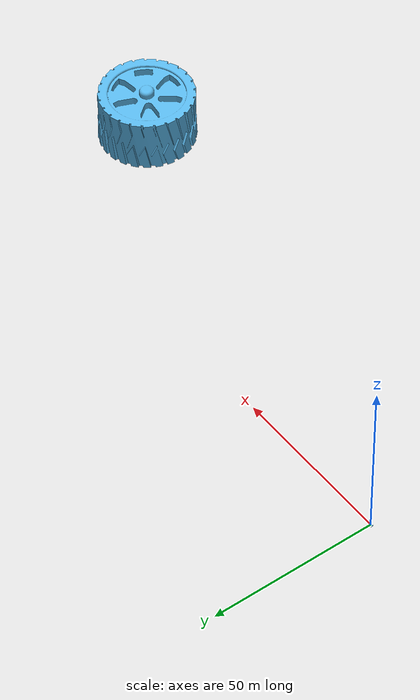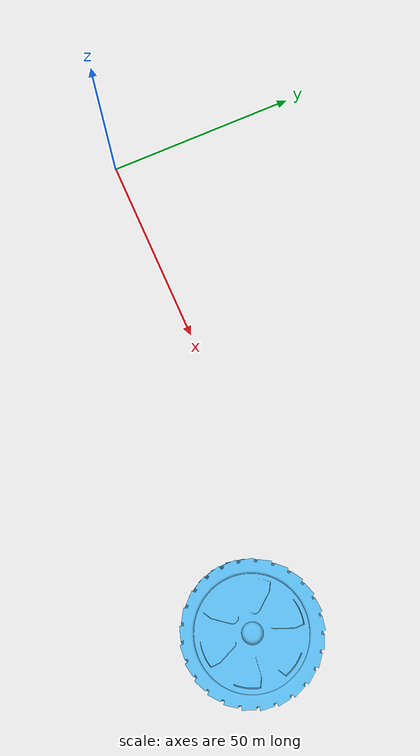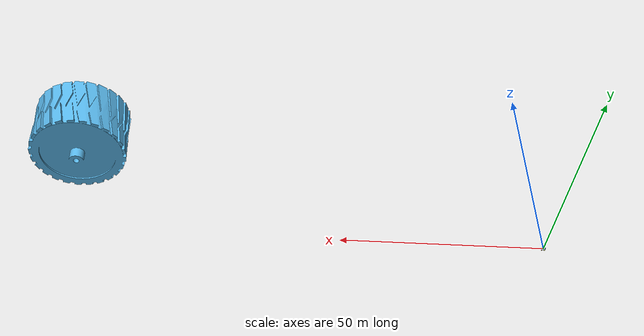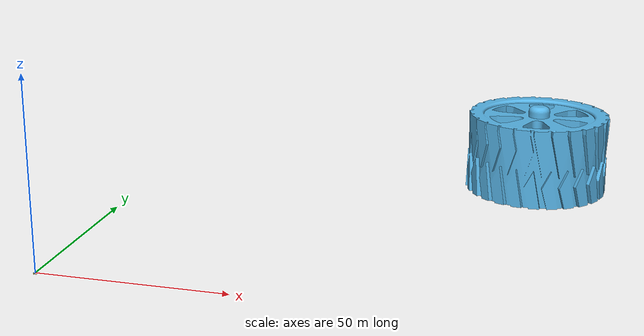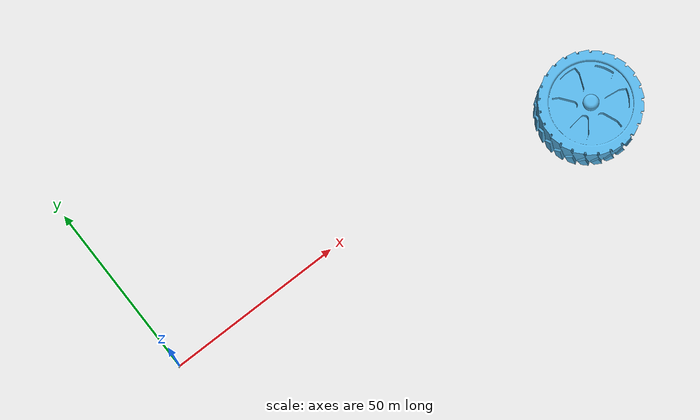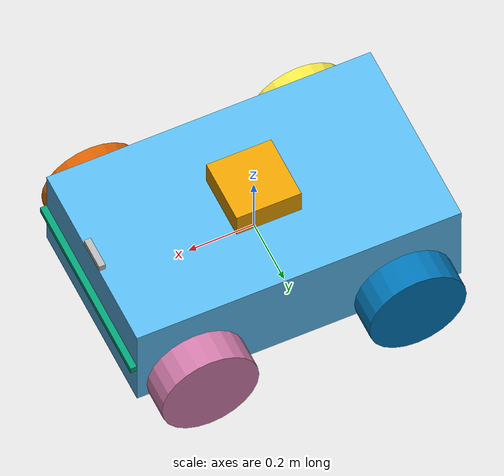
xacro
<?xml version="1.0"?>

<robot name="differential_drive_robot" xmlns:xacro="http://www.ros.org/wiki/xacro">
<xacro:property name="body_link_x_dim" value="1"/>
<xacro:property name="body_link_y_dim" value="0.6"/>
<xacro:property name="body_link_z_dim" value="0.3"/>
<xacro:property name="wheel_link_radius" value="0.15"/>
<xacro:property name="wheel_link_length" value="0.1"/>
<xacro:property name="wheel_link_z_location" value="-0.1"/>
<xacro:property name="body_density" value="2710.0"/>
<xacro:property name="wheel_density" value="2710.0"/>
<xacro:property name="pi_const" value="3.14159265"/>
<xacro:property name="body_mass" value="${body_density*body_link_x_dim*body_link_y_dim*body_link_z_dim}"/>
<xacro:property name="wheel_mass" value="${wheel_density*pi_const*wheel_link_radius*wheel_link_radius*wheel_link_length}"/>
<xacro:property name="Iz_wheel" value="${0.5*wheel_mass*wheel_link_radius*wheel_link_radius}"/>
<xacro:property name="I_wheel" value="${(1.0/12.0)*wheel_mass*(3.0*wheel_link_radius*wheel_link_radius+wheel_link_length*wheel_link_length)}"/>

<xacro:macro name="inertia_wheel">
    <inertial>
	<origin rpy="0 0 0" xyz="0 0 0"/>
	<mass value="${wheel_mass}"/>
	<inertia ixx="${I_wheel}" ixy="0.0" ixz="0.0" iyy="${I_wheel}" iyz="0" izz="${Iz_wheel}"/>
	</inertial>
</xacro:macro>

<xacro:include filename="$(find robot_model_pkg)/urdf/robot.gazebo"/>

<link name="dummy">
</link>
<joint name="dummy_joint" type="fixed">
	<parent link="dummy"/>
	<child link="body_link"/>
</joint>

<link name="body_link">
	<visual>
		<geometry>
			<box size="${body_link_x_dim} ${body_link_y_dim} ${body_link_z_dim}"/>
		</geometry>
	<origin rpy="0 0 0" xyz="0 0 0"/>
	</visual>

	<collision>
		<geometry>
			<box size="${body_link_x_dim} ${body_link_y_dim} ${body_link_z_dim}"/>
		</geometry>
		<origin rpy="0 0 0" xyz="0 0 0"/>
	</collision>

	<inertial>
		<origin rpy="0 0 0" xyz="0 0 0"/>
		<mass value="${body_mass}"/>
	<inertia
	ixx="${(1/12)*body_mass*(body_link_y_dim*body_link_y_dim+body_link_z_dim*body_link_z_dim)}"
	ixy="0"
	ixz="0" iyy="${(1/12)*body_mass*(body_link_x_dim*body_link_x_dim+body_link_z_dim*body_link_z_dim)}"
	iyz="0"
	izz="${(1/12)*body_mass*(body_link_y_dim*body_link_y_dim+body_link_x_dim*body_link_x_dim)}"/>
	</inertial>
</link>

<joint name="before" type="fixed" >
	<parent link="body_link"/>
	<child  link="before_link" />
	<origin rpy="0 0 0" xyz="0 0 0"/>
</joint>

<link name="before_link">
	<visual>
		<origin rpy="0 0 0" xyz="0.51 0 0"/>
		<geometry>
			<box size="0.02 0.6 0.02" />
		</geometry>
	</visual>

	<collision>
		<origin rpy="0 0 0" xyz="0 0 1"/>
		<geometry>
			<box size="0.02 0.6 0.02" />
		</geometry>
	</collision>
</link>

<joint name="wheel1_joint" type="continuous" >
	<parent link="body_link"/>
	<child  link="wheel1_link" />
	<origin xyz="${-body_link_x_dim/2+1.2*wheel_link_radius} ${-body_link_y_dim/2-wheel_link_length/2} ${wheel_link_z_location}" rpy="0 0 0" />
	<axis xyz="0 1 0"/>
	<limit effort="1000" velocity="1000"/>
	<dynamics damping="1.0" friction="1.0"/>
</joint>

<link name="wheel1_link">
	<visual>
		<origin rpy="1.570795 0 0" xyz="0 0 0"/>
		<geometry>
			<cylinder length="${wheel_link_length}" radius="${wheel_link_radius}"/>
		</geometry>
	</visual>

	<collision>
		<origin rpy="1.570795 0 0" xyz="0 0 0"/>
			<geometry>
				<cylinder length="${wheel_link_length}" radius="${wheel_link_radius}"/>
			</geometry>
	</collision>
	<xacro:inertia_wheel/>
</link>

<joint name="wheel2_joint" type="continuous" >
	<parent link="body_link"/>
	<child  link="wheel2_link" />
	<origin xyz="${-body_link_x_dim/2+1.2*wheel_link_radius} ${body_link_y_dim/2+wheel_link_length/2} ${wheel_link_z_location}" rpy="0 0 0" />
	<axis xyz="0 1 0"/>
	<limit effort="1000" velocity="1000"/>
	<dynamics damping="1.0" friction="1.0"/>
</joint>

<link name="wheel2_link">
	<visual>
		<origin rpy="1.570795 0 0" xyz="0 0 0"/>
		<geometry>
			<cylinder length="${wheel_link_length}" radius="${wheel_link_radius}"/>
		</geometry>
	</visual>

	<collision>
		<origin rpy="1.570795 0 0" xyz="0 0 0"/>
		<geometry>
			<cylinder length="${wheel_link_length}" radius="${wheel_link_radius}"/>
		</geometry>
	</collision>
	<xacro:inertia_wheel/>
</link>

<joint name="wheel3_joint" type="continuous" >
	<parent link="body_link"/>
	<child  link="wheel3_link" />
	<origin xyz="${body_link_x_dim/2-1.2*wheel_link_radius} ${-body_link_y_dim/2-wheel_link_length/2} ${wheel_link_z_location}" rpy="0 0 0" />
	<axis xyz="0 1 0"/>
	<limit effort="1000" velocity="1000"/>
	<dynamics damping="1.0" friction="1.0"/>
</joint>

<link name="wheel3_link">
	<visual>
		<origin rpy="1.570795 0 0" xyz="0 0 0"/>
		<geometry>
			<cylinder length="${wheel_link_length}" radius="${wheel_link_radius}"/>
		</geometry>
		</visual>

	<collision>
		<origin rpy="1.570795 0 0" xyz="0 0 0"/>
		<geometry>
			<cylinder length="${wheel_link_length}" radius="${wheel_link_radius}"/>
		</geometry>
	</collision>
	<xacro:inertia_wheel/>
</link>

<joint name="wheel4_joint" type="continuous" >
	<parent link="body_link"/>
	<child  link="wheel4_link" />
	<origin xyz="${body_link_x_dim/2-1.2*wheel_link_radius} ${body_link_y_dim/2+wheel_link_length/2} ${wheel_link_z_location}" rpy="0 0 0" />
	<axis xyz="0 1 0"/>
	<limit effort="1000" velocity="1000"/>
	<dynamics damping="1.0" friction="1.0"/>
</joint>

<link name="wheel4_link">
	<visual>
		<origin rpy="1.570795 0 0" xyz="0 0 0"/>
		<geometry>
			<cylinder length="${wheel_link_length}" radius="${wheel_link_radius}"/>
		</geometry>
	</visual>

	<collision>
		<origin rpy="1.570795 0 0" xyz="0 0 0"/>
		<geometry>
			<cylinder length="${wheel_link_length}" radius="${wheel_link_radius}"/>
		</geometry>
	</collision>
	<xacro:inertia_wheel/>
</link>

<joint name="camera" type="fixed" >
	<parent link="body_link"/>
	<child  link="camera" />
	<origin rpy="0 0 0" xyz="0.49 0 0.16"/>
</joint>

<link name="camera">
	<visual>
		<origin rpy="0 0 0" xyz="0 0 0"/>
		<geometry>
			<box size="0.02 0.1 0.02" />
		</geometry>
	</visual>

	<collision>
		<origin rpy="0 0 0" xyz="0 0 0"/>
		<geometry>
			<box size="0.02 0.1 0.02" />
		</geometry>
	</collision>
</link>

<joint name="hokuyo_joint" type="fixed">
	<origin rpy="0 0 0" xyz="0 0 0.19"/>
	<parent link="body_link"/>
	<child link="hokuyo_link"/>
</joint>

<link name="hokuyo_link">
	<visual>
		<origin rpy="0 0 0" xyz="0 0 0"/>
		<geometry>
			<box size="0.2 0.2 0.08"/>
		</geometry>
 	</visual>
</link>

<joint name="wheel_test_j" type="fixed" >
	<parent link="body_link"/>
	<child  link="wheel_test_l" />
	<origin xyz="0 0 1" rpy="0 0 0" />
</joint>

<link name="wheel_test_l">
	<visual>
		<origin rpy="1.570795 0 0" xyz="0 0 0"/>
		<geometry>

			<mesh filename="package://robot_model_pkg/meshes/wheel.stl"/>
		</geometry>
	</visual>
</link>

</robot>
